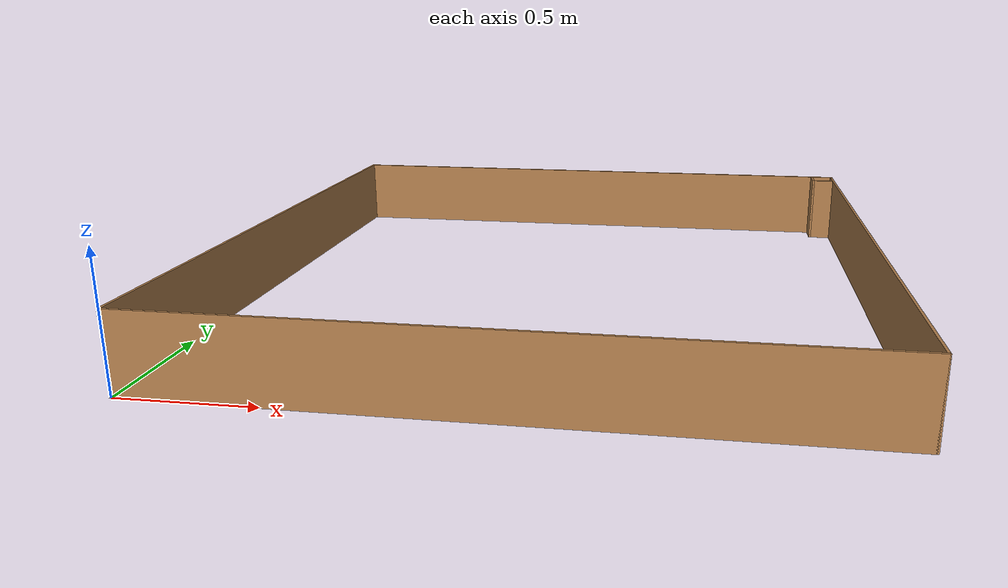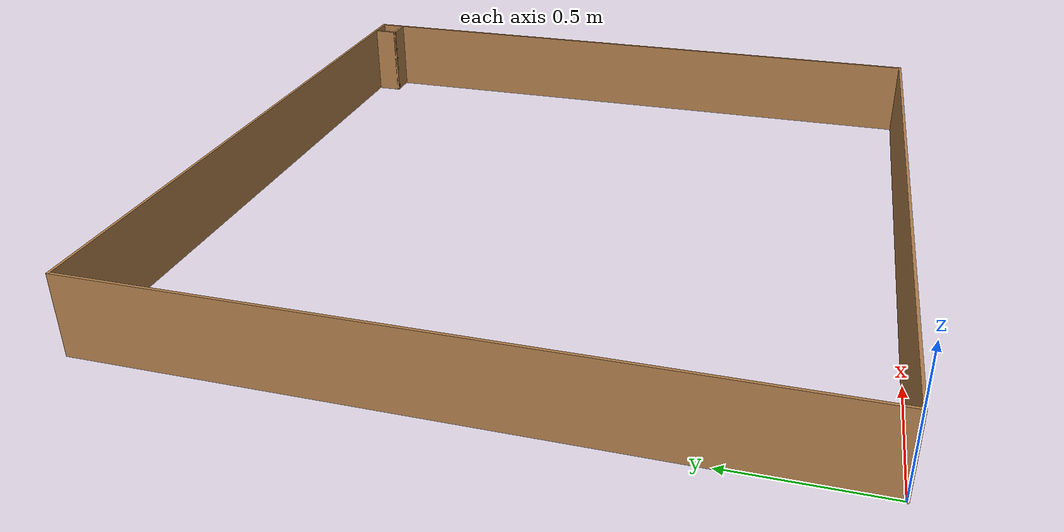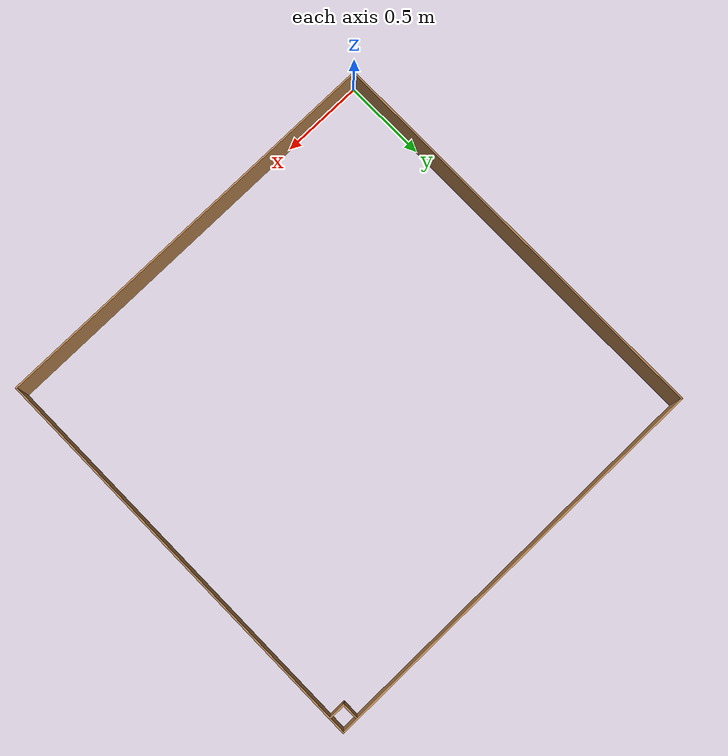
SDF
<?xml version='1.0'?>
<sdf version='1.6'>
  <model name='ParedOrientada'>
    <pose frame=''>1.25 1.25 0 0 -0 0</pose>
    <link name='Wall_22'>
      <collision name='Wall_22_Collision'>
        <geometry>
          <box>
            <size>2.51 0.01 0.3</size>
          </box>
        </geometry>
        <pose frame=''>0 0 0.15 0 -0 0</pose>
      </collision>
      <visual name='Wall_22_Visual'>
        <pose frame=''>0 0 0.15 0 -0 0</pose>
        <geometry>
          <box>
            <size>2.51 0.01 0.3</size>
          </box>
        </geometry>
        <material>
          <script>
            <uri>file://media/materials/scripts/gazebo.material</uri>
            <name>Gazebo/Wood</name>
          </script>
          <ambient>1 1 1 1</ambient>
        </material>
      </visual>
      <pose frame=''>-1.25 0 0 0 -0 1.5708</pose>
    </link>
    <link name='Wall_24'>
      <collision name='Wall_24_Collision'>
        <geometry>
          <box>
            <size>2.51 0.01 0.3</size>
          </box>
        </geometry>
        <pose frame=''>0 0 0.15 0 -0 0</pose>
      </collision>
      <visual name='Wall_24_Visual'>
        <pose frame=''>0 0 0.15 0 -0 0</pose>
        <geometry>
          <box>
            <size>2.51 0.01 0.3</size>
          </box>
        </geometry>
        <material>
          <script>
            <uri>file://media/materials/scripts/gazebo.material</uri>
            <name>Gazebo/Wood</name>
          </script>
          <ambient>1 1 1 1</ambient>
        </material>
      </visual>
      <pose frame=''>0 -1.25 0 0 -0 0</pose>
    </link>
    <link name='Wall_28'>
      <collision name='Wall_28_Collision'>
        <geometry>
          <box>
            <size>2.51 0.01 0.3</size>
          </box>
        </geometry>
        <pose frame=''>0 0 0.15 0 -0 0</pose>
      </collision>
      <visual name='Wall_28_Visual'>
        <pose frame=''>0 0 0.15 0 -0 0</pose>
        <geometry>
          <box>
            <size>2.51 0.01 0.3</size>
          </box>
        </geometry>
        <material>
          <script>
            <uri>file://media/materials/scripts/gazebo.material</uri>
            <name>Gazebo/Wood</name>
          </script>
          <ambient>1 1 1 1</ambient>
        </material>
      </visual>
      <pose frame=''>0 1.25 0 0 -0 0</pose>
    </link>
    <link name='Wall_32'>
      <collision name='Wall_32_Collision'>
        <geometry>
          <box>
            <size>2.51 0.01 0.3</size>
          </box>
        </geometry>
        <pose frame=''>0 0 0.15 0 -0 0</pose>
      </collision>
      <visual name='Wall_32_Visual'>
        <pose frame=''>0 0 0.15 0 -0 0</pose>
        <geometry>
          <box>
            <size>2.51 0.01 0.3</size>
          </box>
        </geometry>
        <material>
          <script>
            <uri>file://media/materials/scripts/gazebo.material</uri>
            <name>Gazebo/Wood</name>
          </script>
          <ambient>1 1 1 1</ambient>
        </material>
      </visual>
      <pose frame=''>1.25 0 0 0 -0 1.5708</pose>
    </link>
    <link name='Wall_34'>
      <collision name='Wall_34_Collision'>
        <geometry>
          <box>
            <size>0.11 0.01 0.3</size>
          </box>
        </geometry>
        <pose frame=''>0 0 0.15 0 -0 0</pose>
      </collision>
      <visual name='Wall_34_Visual'>
        <pose frame=''>0 0 0.15 0 -0 0</pose>
        <geometry>
          <box>
            <size>0.11 0.01 0.3</size>
          </box>
        </geometry>
        <material>
          <script>
            <uri>file://media/materials/scripts/gazebo.material</uri>
            <name>Gazebo/Wood</name>
          </script>
          <ambient>1 1 1 1</ambient>
        </material>
      </visual>
      <pose frame=''>1.15 1.2 0 0 0 -1.5708</pose>
    </link>
    <link name='Wall_36'>
      <collision name='Wall_36_Collision'>
        <geometry>
          <box>
            <size>0.11 0.01 0.3</size>
          </box>
        </geometry>
        <pose frame=''>0 0 0.15 0 -0 0</pose>
      </collision>
      <visual name='Wall_36_Visual'>
        <pose frame=''>0 0 0.15 0 -0 0</pose>
        <geometry>
          <box>
            <size>0.11 0.01 0.3</size>
          </box>
        </geometry>
        <material>
          <script>
            <uri>file://media/materials/scripts/gazebo.material</uri>
            <name>Gazebo/Wood</name>
          </script>
          <ambient>1 1 1 1</ambient>
        </material>
      </visual>
      <pose frame=''>1.2 1.15 0 0 -0 0</pose>
    </link>
    <static>1</static>
  </model>
</sdf>
